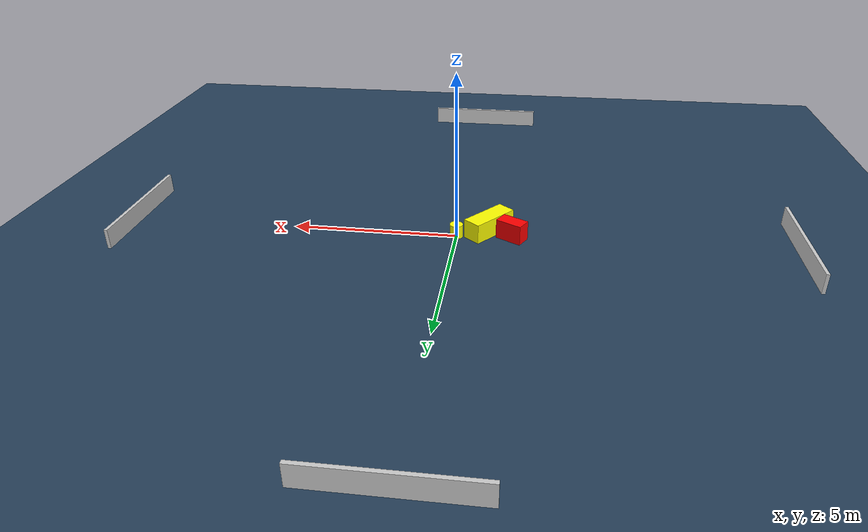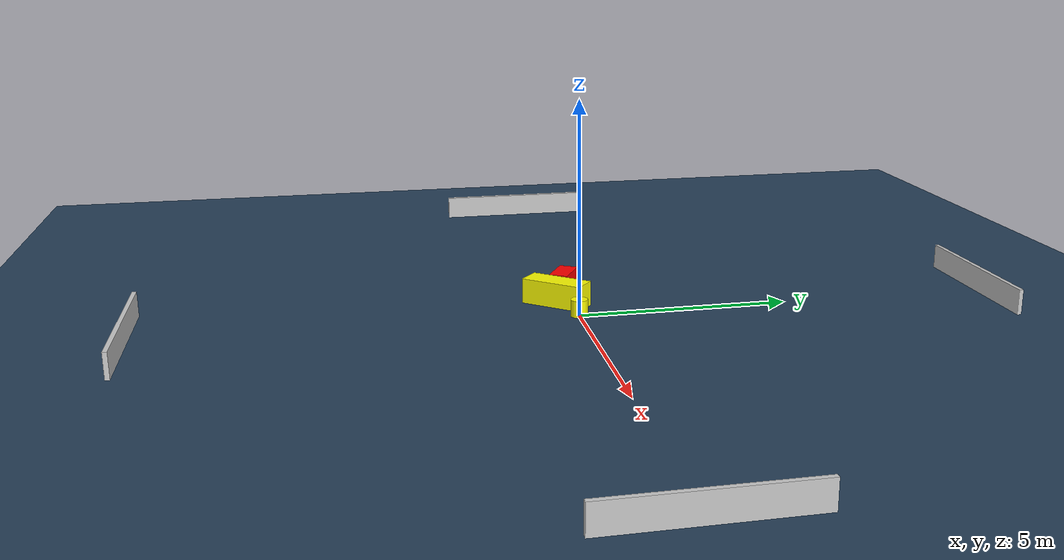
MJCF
<?xml version="1.0" ?>
<mujoco model="generated_environment">
  <option timestep="0.01" integrator="RK4" cone="elliptic"/>
  <default>
    <geom density="1"/>
  </default>
  <asset>
    <texture builtin="gradient" height="3072" name="skybox" rgb1="0.3 0.5 0.7" rgb2="0 0 0" type="skybox" width="512"/>
    <texture builtin="checker" height="300" name="groundplane" rgb1="0.2 0.3 0.4" rgb2="0.1 0.2 0.3" type="2d" width="300"/>
    <material name="groundplane" reflectance="0.2" texrepeat="5 5" texture="groundplane"/>
  </asset>
  <worldbody>
    <light dir="0 0 -1" directional="true" pos="0 0 1.5"/>
    <geom condim="3" friction="0.5 0.005 0.001" material="groundplane" name="floor" pos="0 0 0" size="0 0 0.05" type="plane"/>
    <body name="walls">
      <geom name="wall_1" condim="4" pos="-10.0 0.0 0.3" rgba="0.800000011920929 0.800000011920929 0.800000011920929 1.0" size="0.05 2.0 0.3" type="box"/>
      <geom name="wall_2" condim="4" pos="10.0 0.0 0.3" rgba="0.800000011920929 0.800000011920929 0.800000011920929 1.0" size="0.05 2.0 0.3" type="box"/>
      <geom name="wall_3" condim="4" pos="0.0 -10.0 0.3" rgba="0.800000011920929 0.800000011920929 0.800000011920929 1.0" size="2.0 0.05 0.3" type="box"/>
      <geom name="wall_4" condim="4" pos="0.0 10.0 0.3" rgba="0.800000011920929 0.800000011920929 0.800000011920929 1.0" size="2.0 0.05 0.3" type="box"/>
    </body>
    <body name="robot">
      <joint name="joint_x" type="slide" pos="0 0 0" axis="1 0 0"/>
      <joint name="joint_y" type="slide" pos="0 0 0" axis="0 1 0"/>
      <geom name="robot" type="cylinder" pos="0.0 0.0 0.2" size="0.2 0.2 0.0" mass="5.0" friction="1.0 0.005 0.0001" condim="4" rgba="1.0 1.0 0.0 1.0"/>
    </body>
    <body name="obstacle_1_movable">
      <geom name="obstacle_1_movable" condim="4" pos="-0.9538713618867677 -0.35442028083322924 0.3" euler="0 0 140.63634410114582" friction="0.0 0.005 0.001" rgba="1.0 1.0 0.0 1.0" size="0.2878052573345009 0.7633102529981117 0.3" type="box" mass="0.1"/>
      <joint type="free"/>
    </body>
    <body name="obstacle_2_static">
      <geom name="obstacle_2_static" condim="4" pos="-1.6630912145070014 -0.043315636460859376 0.3" euler="0 0 151.07653665937937" friction="0.0 0.005 0.001" rgba="1.0 0.0 0.0 1.0" size="0.41483647146444436 0.2261364609372042 0.3" type="box"/>
    </body>
  </worldbody>
  <actuator>
    <motor name="actuator_x" joint="joint_x" gear="1" ctrlrange="-1 1"/>
    <motor name="actuator_y" joint="joint_y" gear="1" ctrlrange="-1 1"/>
  </actuator>
</mujoco>
